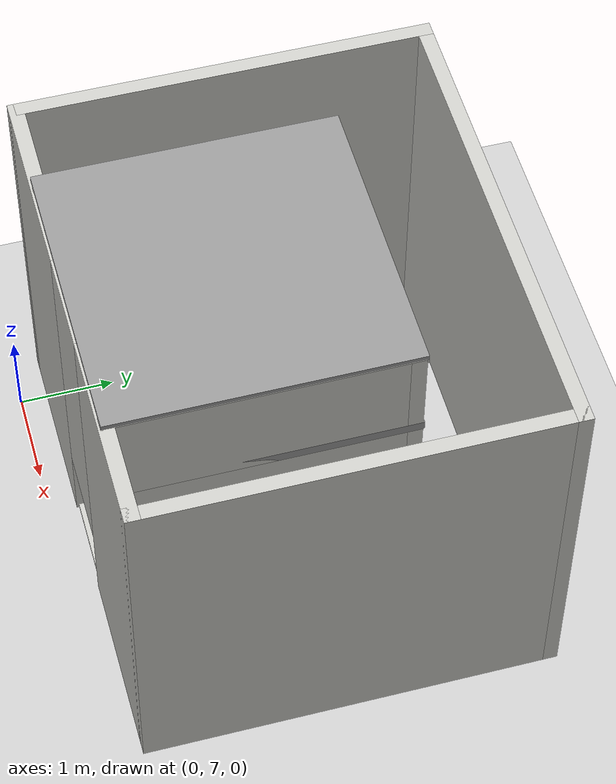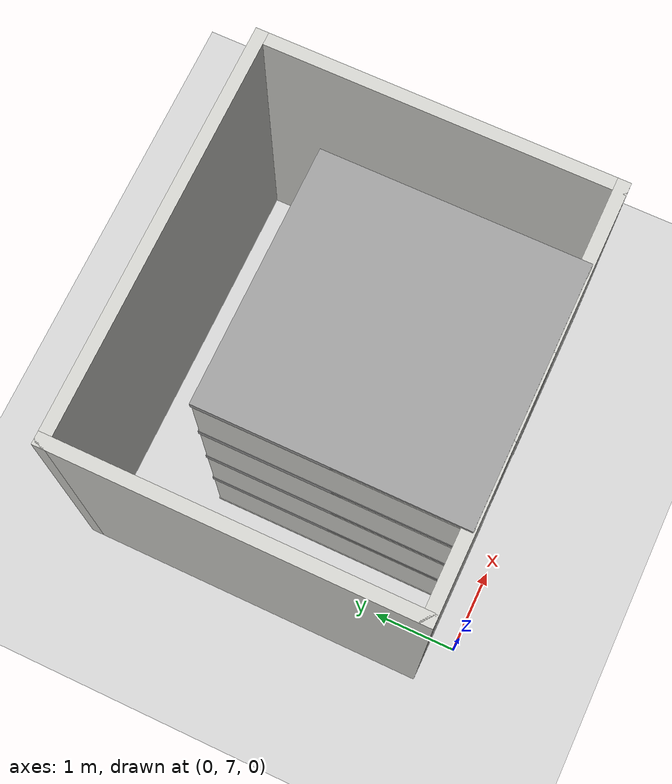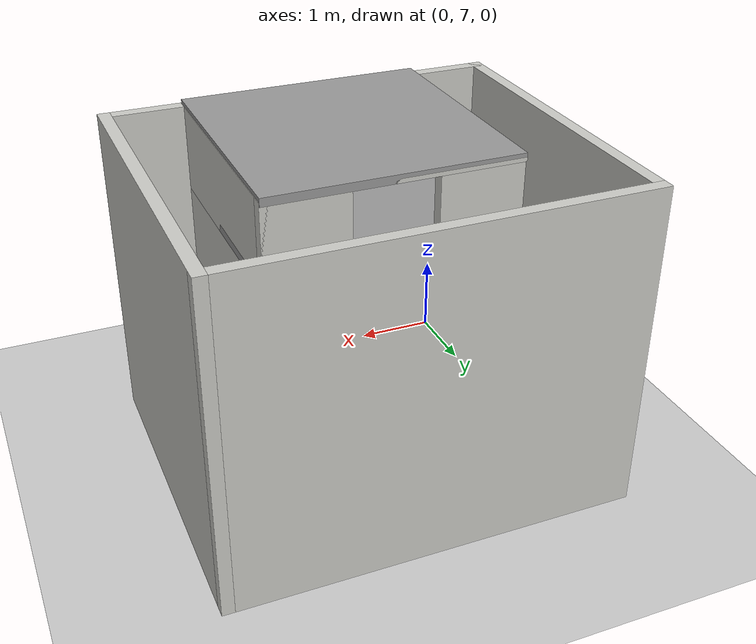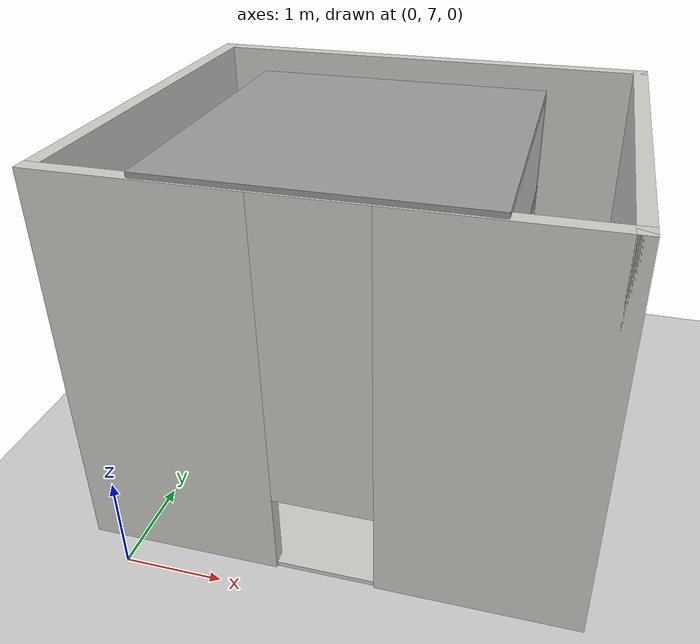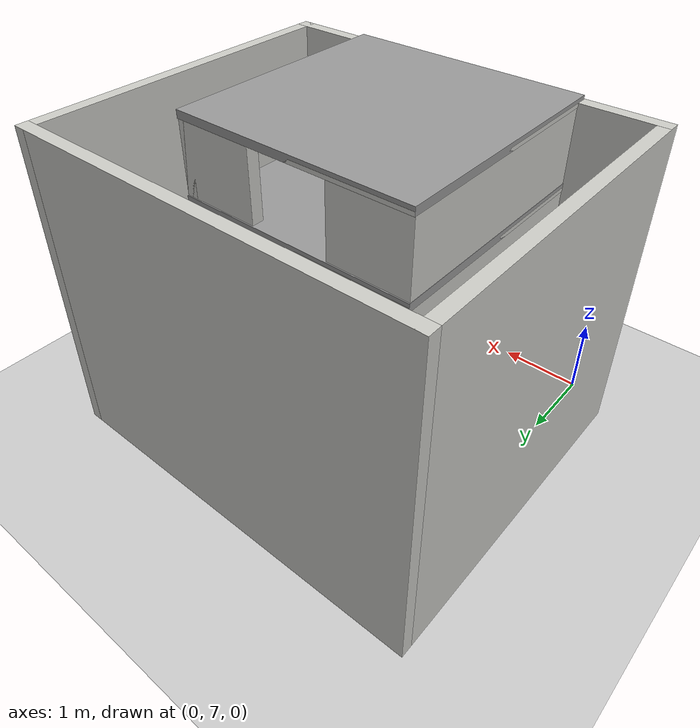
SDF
<sdf version="1.7">
 <world name="default">
  <model name="ground_plane">
   <static>1</static>
   <link name="link">
    <collision name="collision">
     <geometry><plane><normal>0 0 1</normal><size>100 100</size></plane></geometry>
     <surface><friction><ode><mu>100</mu><mu2>50</mu2></ode></friction></surface>
    </collision>
    <visual name="visual">
     <cast_shadows>0</cast_shadows>
     <geometry><plane><normal>0 0 1</normal><size>100 100</size></plane></geometry>
     <material>
      <script><uri>file://media/materials/scripts/gazebo.material</uri><name>Gazebo/Grey</name></script>
     </material>
    </visual>
   </link>
   <pose>-9.56672 -8.6074 0 0 -0 0</pose>
  </model>
  <model name="apart1">
   <pose>-0.006115 6.92816 0 0 -0 3.14159</pose>
   <link name="Floor_10">
    <collision name="Floor_10_Collision">
     <geometry><box><size>3.005 3.015 0.1</size></box></geometry>
     <pose>0 0 0.05 0 -0 0</pose>
    </collision>
    <visual name="Floor_10_Visual">
     <pose>0 0 0.05 0 -0 0</pose>
     <geometry><box><size>3.005 3.015 0.1</size></box></geometry>
     <material>
      <script><uri>file://media/materials/scripts/gazebo.material</uri><name>Gazebo/Grey</name></script>
      <ambient>1 1 1 1</ambient>
     </material>
     <meta><layer>2</layer></meta>
    </visual>
    <pose>-1.995 -1.885 2 0 -0 0</pose>
   </link>
   <link name="Floor_11">
    <collision name="Floor_11_Collision">
     <geometry><box><size>3.005 3.015 0.1</size></box></geometry>
     <pose>0 0 0.05 0 -0 0</pose>
    </collision>
    <visual name="Floor_11_Visual">
     <pose>0 0 0.05 0 -0 0</pose>
     <geometry><box><size>3.005 3.015 0.1</size></box></geometry>
     <material>
      <script><uri>file://media/materials/scripts/gazebo.material</uri><name>Gazebo/Grey</name></script>
      <ambient>1 1 1 1</ambient>
     </material>
     <meta><layer>3</layer></meta>
    </visual>
    <pose>-1.995 -1.885 3 0 -0 0</pose>
   </link>
   <link name="Floor_12">
    <collision name="Floor_12_Collision">
     <geometry><box><size>3 3.01 0.1</size></box></geometry>
     <pose>0 0 0.05 0 -0 0</pose>
    </collision>
    <visual name="Floor_12_Visual">
     <pose>0 0 0.05 0 -0 0</pose>
     <geometry><box><size>3 3.01 0.1</size></box></geometry>
     <material>
      <script><uri>file://media/materials/scripts/gazebo.material</uri><name>Gazebo/Grey</name></script>
      <ambient>1 1 1 1</ambient>
     </material>
     <meta><layer>4</layer></meta>
    </visual>
    <pose>-1.9925 -1.8875 4 0 -0 0</pose>
   </link>
   <link name="Floor_9">
    <collision name="Floor_9_Collision">
     <geometry><box><size>3.005 3.015 0.1</size></box></geometry>
     <pose>0 0 0.05 0 -0 0</pose>
    </collision>
    <visual name="Floor_9_Visual">
     <pose>0 0 0.05 0 -0 0</pose>
     <geometry><box><size>3.005 3.015 0.1</size></box></geometry>
     <material>
      <script><uri>file://media/materials/scripts/gazebo.material</uri><name>Gazebo/Grey</name></script>
      <ambient>1 1 1 1</ambient>
     </material>
     <meta><layer>1</layer></meta>
    </visual>
    <pose>-1.995 -1.885 1 0 -0 0</pose>
   </link>
   <link name="Wall_100">
    <collision name="Wall_100_Collision">
     <geometry><box><size>3 0.15 1.05</size></box></geometry>
     <pose>0 0 0.525 0 -0 0</pose>
    </collision>
    <visual name="Wall_100_Visual">
     <pose>0 0 0.525 0 -0 0</pose>
     <geometry><box><size>3 0.15 1.05</size></box></geometry>
     <material>
      <script><uri>file://media/materials/scripts/gazebo.material</uri><name>Gazebo/CeilingTiled</name></script>
      <ambient>1 1 1 1</ambient>
     </material>
     <meta><layer>3</layer></meta>
    </visual>
    <pose>-0.5725 -1.8775 3 0 -0 1.5708</pose>
   </link>
   <link name="Wall_101">
    <collision name="Wall_101_Collision">
     <geometry><box><size>3 0.15 1.05</size></box></geometry>
     <pose>0 0 0.525 0 -0 0</pose>
    </collision>
    <visual name="Wall_101_Visual">
     <pose>0 0 0.525 0 -0 0</pose>
     <geometry><box><size>3 0.15 1.05</size></box></geometry>
     <material>
      <script><uri>file://media/materials/scripts/gazebo.material</uri><name>Gazebo/CeilingTiled</name></script>
      <ambient>1 1 1 1</ambient>
     </material>
     <meta><layer>3</layer></meta>
    </visual>
    <pose>-3.4225 -1.8775 3 0 -0 1.5708</pose>
   </link>
   <link name="Wall_102">
    <collision name="Wall_102_Collision">
     <geometry><box><size>1 0.15 1.05</size></box></geometry>
     <pose>0 0 0.525 0 -0 0</pose>
    </collision>
    <visual name="Wall_102_Visual">
     <pose>0 0 0.525 0 -0 0</pose>
     <geometry><box><size>1 0.15 1.05</size></box></geometry>
     <material>
      <script><uri>file://media/materials/scripts/gazebo.material</uri><name>Gazebo/CeilingTiled</name></script>
      <ambient>1 1 1 1</ambient>
     </material>
     <meta><layer>3</layer></meta>
    </visual>
    <pose>-2.9975 -3.3025 3 0 -0 0</pose>
   </link>
   <link name="Wall_103">
    <collision name="Wall_103_Collision">
     <geometry><box><size>1 0.15 1.05</size></box></geometry>
     <pose>0 0 0.525 0 -0 0</pose>
    </collision>
    <visual name="Wall_103_Visual">
     <pose>0 0 0.525 0 -0 0</pose>
     <geometry><box><size>1 0.15 1.05</size></box></geometry>
     <material>
      <script><uri>file://media/materials/scripts/gazebo.material</uri><name>Gazebo/CeilingTiled</name></script>
      <ambient>1 1 1 1</ambient>
     </material>
     <meta><layer>3</layer></meta>
    </visual>
    <pose>-0.9975 -3.3025 3 0 -0 3.14159</pose>
   </link>
   <link name="Wall_104">
    <collision name="Wall_104_Collision">
     <geometry><box><size>3.01 3 0.05</size></box></geometry>
     <pose>0 0 0.025 0 -0 0</pose>
    </collision>
    <visual name="Wall_104_Visual">
     <pose>0 0 0.025 0 -0 0</pose>
     <geometry><box><size>3.01 3 0.05</size></box></geometry>
     <material>
      <script><uri>file://media/materials/scripts/gazebo.material</uri><name>Gazebo/CeilingTiled</name></script>
      <ambient>1 1 1 1</ambient>
     </material>
     <meta><layer>4</layer></meta>
    </visual>
    <pose>-1.9925 -1.8875 4 0 -0 -1.5708</pose>
   </link>
   <link name="Wall_117">
    <pose>-1.9975 -0.4325 0 0 -0 0</pose>
    <visual name="Wall_117_Visual_0">
     <pose>-1.4975 0 2.025 0 -0 0</pose>
     <geometry><box><size>2.005 0.15 4.05</size></box></geometry>
     <material>
      <script><uri>file://media/materials/scripts/gazebo.material</uri><name>Gazebo/CeilingTiled</name></script>
      <ambient>0.760784 0.662745 0.627451 1</ambient>
     </material>
     <meta><layer>0</layer></meta>
    </visual>
    <collision name="Wall_117_Collision_0">
     <geometry><box><size>2.005 0.15 4.05</size></box></geometry>
     <pose>-1.4975 0 2.025 0 -0 0</pose>
    </collision>
    <visual name="Wall_117_Visual_1">
     <pose>1.5025 0 2.025 0 -0 0</pose>
     <geometry><box><size>1.995 0.15 4.05</size></box></geometry>
     <material>
      <script><uri>file://media/materials/scripts/gazebo.material</uri><name>Gazebo/CeilingTiled</name></script>
      <ambient>0.760784 0.662745 0.627451 1</ambient>
     </material>
     <meta><layer>0</layer></meta>
    </visual>
    <collision name="Wall_117_Collision_1">
     <geometry><box><size>1.995 0.15 4.05</size></box></geometry>
     <pose>1.5025 0 2.025 0 -0 0</pose>
    </collision>
    <visual name="Wall_117_Visual_2">
     <pose>0.005 0 2.475 0 -0 0</pose>
     <geometry><box><size>1 0.15 3.15</size></box></geometry>
     <material>
      <script><uri>file://media/materials/scripts/gazebo.material</uri><name>Gazebo/CeilingTiled</name></script>
      <ambient>0.760784 0.662745 0.627451 1</ambient>
     </material>
     <meta><layer>0</layer></meta>
    </visual>
    <collision name="Wall_117_Collision_2">
     <geometry><box><size>1 0.15 3.15</size></box></geometry>
     <pose>0.005 0 2.475 0 -0 0</pose>
    </collision>
   </link>
   <link name="Wall_118">
    <collision name="Wall_118_Collision">
     <geometry><box><size>4.25 0.15 4.05</size></box></geometry>
     <pose>0 0 2.025 0 -0 0</pose>
    </collision>
    <visual name="Wall_118_Visual">
     <pose>0 0 2.025 0 -0 0</pose>
     <geometry><box><size>4.25 0.15 4.05</size></box></geometry>
     <material>
      <script><uri>file://media/materials/scripts/gazebo.material</uri><name>Gazebo/CeilingTiled</name></script>
      <ambient>0.760784 0.662745 0.627451 1</ambient>
     </material>
     <meta><layer>0</layer></meta>
    </visual>
    <pose>0.4275 -2.4825 0 0 -0 -1.5708</pose>
   </link>
   <link name="Wall_119">
    <collision name="Wall_119_Collision">
     <geometry><box><size>5 0.15 4.05</size></box></geometry>
     <pose>0 0 2.025 0 -0 0</pose>
    </collision>
    <visual name="Wall_119_Visual">
     <pose>0 0 2.025 0 -0 0</pose>
     <geometry><box><size>5 0.15 4.05</size></box></geometry>
     <material>
      <script><uri>file://media/materials/scripts/gazebo.material</uri><name>Gazebo/CeilingTiled</name></script>
      <ambient>0.760784 0.662745 0.627451 1</ambient>
     </material>
     <meta><layer>0</layer></meta>
    </visual>
    <pose>-1.9975 -4.5325 0 0 -0 3.14159</pose>
   </link>
   <link name="Wall_120">
    <collision name="Wall_120_Collision">
     <geometry><box><size>4.25 0.15 4.05</size></box></geometry>
     <pose>0 0 2.025 0 -0 0</pose>
    </collision>
    <visual name="Wall_120_Visual">
     <pose>0 0 2.025 0 -0 0</pose>
     <geometry><box><size>4.25 0.15 4.05</size></box></geometry>
     <material>
      <script><uri>file://media/materials/scripts/gazebo.material</uri><name>Gazebo/CeilingTiled</name></script>
      <ambient>0.760784 0.662745 0.627451 1</ambient>
     </material>
     <meta><layer>0</layer></meta>
    </visual>
    <pose>-4.4225 -2.4825 0 0 -0 1.5708</pose>
   </link>
   <link name="Wall_71">
    <collision name="Wall_71_Collision">
     <geometry><box><size>3.01 3 0.05</size></box></geometry>
     <pose>0 0 0.025 0 -0 0</pose>
    </collision>
    <visual name="Wall_71_Visual">
     <pose>0 0 0.025 0 -0 0</pose>
     <geometry><box><size>3.01 3 0.05</size></box></geometry>
     <material>
      <script><uri>file://media/materials/scripts/gazebo.material</uri><name>Gazebo/CeilingTiled</name></script>
      <ambient>1 1 1 1</ambient>
     </material>
     <meta><layer>0</layer></meta>
    </visual>
    <pose>-1.9925 -1.8875 0 0 -0 -1.5708</pose>
   </link>
   <link name="Wall_73">
    <collision name="Wall_73_Collision">
     <geometry><box><size>3 0.15 1</size></box></geometry>
     <pose>0 0 0.5 0 -0 0</pose>
    </collision>
    <visual name="Wall_73_Visual">
     <pose>0 0 0.5 0 -0 0</pose>
     <geometry><box><size>3 0.15 1</size></box></geometry>
     <material>
      <script><uri>file://media/materials/scripts/gazebo.material</uri><name>Gazebo/CeilingTiled</name></script>
      <ambient>1 1 1 1</ambient>
     </material>
     <meta><layer>0</layer></meta>
    </visual>
    <pose>-0.5725 -1.8775 0 0 -0 1.5708</pose>
   </link>
   <link name="Wall_75">
    <collision name="Wall_75_Collision">
     <geometry><box><size>3 0.15 1</size></box></geometry>
     <pose>0 0 0.5 0 -0 0</pose>
    </collision>
    <visual name="Wall_75_Visual">
     <pose>0 0 0.5 0 -0 0</pose>
     <geometry><box><size>3 0.15 1</size></box></geometry>
     <material>
      <script><uri>file://media/materials/scripts/gazebo.material</uri><name>Gazebo/CeilingTiled</name></script>
      <ambient>1 1 1 1</ambient>
     </material>
     <meta><layer>0</layer></meta>
    </visual>
    <pose>-3.4225 -1.8775 0 0 -0 1.5708</pose>
   </link>
   <link name="Wall_85">
    <collision name="Wall_85_Collision">
     <geometry><box><size>1 0.15 1</size></box></geometry>
     <pose>0 0 0.5 0 -0 0</pose>
    </collision>
    <visual name="Wall_85_Visual">
     <pose>0 0 0.5 0 -0 0</pose>
     <geometry><box><size>1 0.15 1</size></box></geometry>
     <material>
      <script><uri>file://media/materials/scripts/gazebo.material</uri><name>Gazebo/CeilingTiled</name></script>
      <ambient>1 1 1 1</ambient>
     </material>
     <meta><layer>0</layer></meta>
    </visual>
    <pose>-2.9975 -3.3025 0 0 -0 0</pose>
   </link>
   <link name="Wall_87">
    <collision name="Wall_87_Collision">
     <geometry><box><size>1 0.15 1</size></box></geometry>
     <pose>0 0 0.5 0 -0 0</pose>
    </collision>
    <visual name="Wall_87_Visual">
     <pose>0 0 0.5 0 -0 0</pose>
     <geometry><box><size>1 0.15 1</size></box></geometry>
     <material>
      <script><uri>file://media/materials/scripts/gazebo.material</uri><name>Gazebo/CeilingTiled</name></script>
      <ambient>1 1 1 1</ambient>
     </material>
     <meta><layer>0</layer></meta>
    </visual>
    <pose>-0.9975 -3.3025 0 0 -0 3.14159</pose>
   </link>
   <link name="Wall_89">
    <collision name="Wall_89_Collision">
     <geometry><box><size>3.01 3 0.05</size></box></geometry>
     <pose>0 0 0.025 0 -0 0</pose>
    </collision>
    <visual name="Wall_89_Visual">
     <pose>0 0 0.025 0 -0 0</pose>
     <geometry><box><size>3.01 3 0.05</size></box></geometry>
     <material>
      <script><uri>file://media/materials/scripts/gazebo.material</uri><name>Gazebo/CeilingTiled</name></script>
      <ambient>1 1 1 1</ambient>
     </material>
     <meta><layer>1</layer></meta>
    </visual>
    <pose>-1.9925 -1.8875 1 0 -0 -1.5708</pose>
   </link>
   <link name="Wall_90">
    <collision name="Wall_90_Collision">
     <geometry><box><size>3 0.15 1</size></box></geometry>
     <pose>0 0 0.5 0 -0 0</pose>
    </collision>
    <visual name="Wall_90_Visual">
     <pose>0 0 0.5 0 -0 0</pose>
     <geometry><box><size>3 0.15 1</size></box></geometry>
     <material>
      <script><uri>file://media/materials/scripts/gazebo.material</uri><name>Gazebo/CeilingTiled</name></script>
      <ambient>1 1 1 1</ambient>
     </material>
     <meta><layer>1</layer></meta>
    </visual>
    <pose>-0.5725 -1.8775 1 0 -0 1.5708</pose>
   </link>
   <link name="Wall_91">
    <collision name="Wall_91_Collision">
     <geometry><box><size>3 0.15 1</size></box></geometry>
     <pose>0 0 0.5 0 -0 0</pose>
    </collision>
    <visual name="Wall_91_Visual">
     <pose>0 0 0.5 0 -0 0</pose>
     <geometry><box><size>3 0.15 1</size></box></geometry>
     <material>
      <script><uri>file://media/materials/scripts/gazebo.material</uri><name>Gazebo/CeilingTiled</name></script>
      <ambient>1 1 1 1</ambient>
     </material>
     <meta><layer>1</layer></meta>
    </visual>
    <pose>-3.4225 -1.8775 1 0 -0 1.5708</pose>
   </link>
   <link name="Wall_92">
    <collision name="Wall_92_Collision">
     <geometry><box><size>1 0.15 1</size></box></geometry>
     <pose>0 0 0.5 0 -0 0</pose>
    </collision>
    <visual name="Wall_92_Visual">
     <pose>0 0 0.5 0 -0 0</pose>
     <geometry><box><size>1 0.15 1</size></box></geometry>
     <material>
      <script><uri>file://media/materials/scripts/gazebo.material</uri><name>Gazebo/CeilingTiled</name></script>
      <ambient>1 1 1 1</ambient>
     </material>
     <meta><layer>1</layer></meta>
    </visual>
    <pose>-2.9975 -3.3025 1 0 -0 0</pose>
   </link>
   <link name="Wall_93">
    <collision name="Wall_93_Collision">
     <geometry><box><size>1 0.15 1</size></box></geometry>
     <pose>0 0 0.5 0 -0 0</pose>
    </collision>
    <visual name="Wall_93_Visual">
     <pose>0 0 0.5 0 -0 0</pose>
     <geometry><box><size>1 0.15 1</size></box></geometry>
     <material>
      <script><uri>file://media/materials/scripts/gazebo.material</uri><name>Gazebo/CeilingTiled</name></script>
      <ambient>1 1 1 1</ambient>
     </material>
     <meta><layer>1</layer></meta>
    </visual>
    <pose>-0.9975 -3.3025 1 0 -0 3.14159</pose>
   </link>
   <link name="Wall_94">
    <collision name="Wall_94_Collision">
     <geometry><box><size>3.01 3 0.05</size></box></geometry>
     <pose>0 0 0.025 0 -0 0</pose>
    </collision>
    <visual name="Wall_94_Visual">
     <pose>0 0 0.025 0 -0 0</pose>
     <geometry><box><size>3.01 3 0.05</size></box></geometry>
     <material>
      <script><uri>file://media/materials/scripts/gazebo.material</uri><name>Gazebo/CeilingTiled</name></script>
      <ambient>1 1 1 1</ambient>
     </material>
     <meta><layer>2</layer></meta>
    </visual>
    <pose>-1.9925 -1.8875 2 0 -0 -1.5708</pose>
   </link>
   <link name="Wall_95">
    <collision name="Wall_95_Collision">
     <geometry><box><size>3 0.15 1</size></box></geometry>
     <pose>0 0 0.5 0 -0 0</pose>
    </collision>
    <visual name="Wall_95_Visual">
     <pose>0 0 0.5 0 -0 0</pose>
     <geometry><box><size>3 0.15 1</size></box></geometry>
     <material>
      <script><uri>file://media/materials/scripts/gazebo.material</uri><name>Gazebo/CeilingTiled</name></script>
      <ambient>1 1 1 1</ambient>
     </material>
     <meta><layer>2</layer></meta>
    </visual>
    <pose>-0.5725 -1.8775 2 0 -0 1.5708</pose>
   </link>
   <link name="Wall_96">
    <collision name="Wall_96_Collision">
     <geometry><box><size>3 0.15 1</size></box></geometry>
     <pose>0 0 0.5 0 -0 0</pose>
    </collision>
    <visual name="Wall_96_Visual">
     <pose>0 0 0.5 0 -0 0</pose>
     <geometry><box><size>3 0.15 1</size></box></geometry>
     <material>
      <script><uri>file://media/materials/scripts/gazebo.material</uri><name>Gazebo/CeilingTiled</name></script>
      <ambient>1 1 1 1</ambient>
     </material>
     <meta><layer>2</layer></meta>
    </visual>
    <pose>-3.4225 -1.8775 2 0 -0 1.5708</pose>
   </link>
   <link name="Wall_97">
    <collision name="Wall_97_Collision">
     <geometry><box><size>1 0.15 1</size></box></geometry>
     <pose>0 0 0.5 0 -0 0</pose>
    </collision>
    <visual name="Wall_97_Visual">
     <pose>0 0 0.5 0 -0 0</pose>
     <geometry><box><size>1 0.15 1</size></box></geometry>
     <material>
      <script><uri>file://media/materials/scripts/gazebo.material</uri><name>Gazebo/CeilingTiled</name></script>
      <ambient>1 1 1 1</ambient>
     </material>
     <meta><layer>2</layer></meta>
    </visual>
    <pose>-2.9975 -3.3025 2 0 -0 0</pose>
   </link>
   <link name="Wall_98">
    <collision name="Wall_98_Collision">
     <geometry><box><size>1 0.15 1</size></box></geometry>
     <pose>0 0 0.5 0 -0 0</pose>
    </collision>
    <visual name="Wall_98_Visual">
     <pose>0 0 0.5 0 -0 0</pose>
     <geometry><box><size>1 0.15 1</size></box></geometry>
     <material>
      <script><uri>file://media/materials/scripts/gazebo.material</uri><name>Gazebo/CeilingTiled</name></script>
      <ambient>1 1 1 1</ambient>
     </material>
     <meta><layer>2</layer></meta>
    </visual>
    <pose>-0.9975 -3.3025 2 0 -0 3.14159</pose>
   </link>
   <link name="Wall_99">
    <collision name="Wall_99_Collision">
     <geometry><box><size>3.01 3 0.05</size></box></geometry>
     <pose>0 0 0.025 0 -0 0</pose>
    </collision>
    <visual name="Wall_99_Visual">
     <pose>0 0 0.025 0 -0 0</pose>
     <geometry><box><size>3.01 3 0.05</size></box></geometry>
     <material>
      <script><uri>file://media/materials/scripts/gazebo.material</uri><name>Gazebo/CeilingTiled</name></script>
      <ambient>1 1 1 1</ambient>
     </material>
     <meta><layer>3</layer></meta>
    </visual>
    <pose>-1.9925 -1.8875 3 0 -0 -1.5708</pose>
   </link>
   <static>1</static>
  </model>
 </world>
</sdf>
